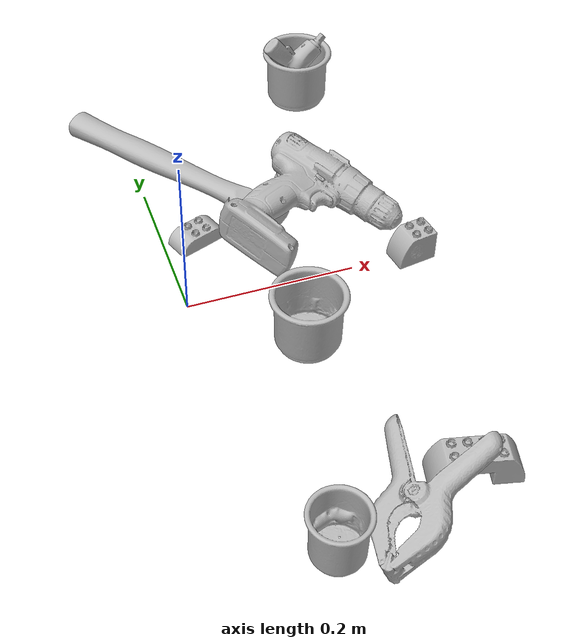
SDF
<sdf version="1.4">
  <world name="default">
    <light name="light1" type="point">
      <pose>0 0 1 0 0 0</pose>
      <diffuse>3 3 3 1</diffuse>
      <specular>3 3 3 1</specular>
    </light>
    <light name="light2" type="point">
      <pose>0 0.5 2 0 0 0</pose>
      <diffuse>1 1 1 1</diffuse>
      <specular>1 1 1 1</specular>
    </light>
    <light name="light3" type="point">
      <pose>0 0.5 2 0 0 0</pose>
      <diffuse>3 3 3 1</diffuse>
      <specular>3 3 3 1</specular>
    </light>
    <scene>
      <ambient>0.7 0.7 0.7</ambient>
    </scene>
    <model name="cup1">
      <link name="link_cup1">
        <collision name="default">
          <geometry>
            <mesh>
              <uri>model://g_cups/collision_meshes/collision.obj</uri>
              <scale>1.0 1.0 1.0</scale>
            </mesh>
          </geometry>
          <surface>
            <friction>
              <ode>
                <mu>0.5</mu>
                <mu2>0.5</mu2>
              </ode>
            </friction>
          <contact>
        <ode>
            <max_vel>0</max_vel>
            <min_depth>0.0001</min_depth>
            <kp>1e8</kp>
        </ode>
    </contact></surface>
        </collision>
        <visual name="default">
          <geometry>
            <mesh>
              <uri>model://g_cups/visual_meshes/visual.dae</uri>
              <scale>1.0 1.0 1.0</scale>
            </mesh>
          </geometry>
        </visual>
        <inertial>
          <mass>0.057625629007816315</mass>
          <pose>-0.0007946282275952399 -4.206500670989044e-05 -0.0021329375449568033 -0.21382697289054745 -0.3141031271963666 0.3112149002706268</pose>
          <inertia>
            <ixx>6.726202e-05</ixx>
            <iyy>6.7033216e-05</iyy>
            <izz>6.967186e-05</izz>
            <ixy>0</ixy>
            <ixz>0</ixz>
            <iyz>0</iyz>
          </inertia>
        </inertial>
      </link>
      <pose>0.11104781925678253 -0.0920594111084938 0.03720301762223244 -2.603258123691808e-06 -6.40142690687992e-05 2.620608315512678</pose>
    </model>
    <model name="cup2">
      <link name="link_cup2">
        <collision name="default">
          <geometry>
            <mesh>
              <uri>model://c_cups/collision_meshes/collision.obj</uri>
              <scale>1.0 1.0 1.0</scale>
            </mesh>
          </geometry>
          <surface>
            <friction>
              <ode>
                <mu>0.5</mu>
                <mu2>0.5</mu2>
              </ode>
            </friction>
          <contact>
        <ode>
            <max_vel>0</max_vel>
            <min_depth>0.0001</min_depth>
            <kp>1e8</kp>
        </ode>
    </contact></surface>
        </collision>
        <visual name="default">
          <geometry>
            <mesh>
              <uri>model://c_cups/visual_meshes/visual.dae</uri>
              <scale>1.0 1.0 1.0</scale>
            </mesh>
          </geometry>
        </visual>
        <inertial>
          <mass>0.03477548435330391</mass>
          <pose>0.0007237261161208153 0.0020153902005404234 -0.0012750983005389571 0.30215732346046187 0.013461711857135551 -0.08771879968331305</pose>
          <inertia>
            <ixx>2.5862058e-05</ixx>
            <iyy>2.540504e-05</iyy>
            <izz>2.2871589e-05</izz>
            <ixy>0</ixy>
            <ixz>0</ixz>
            <iyz>0</iyz>
          </inertia>
        </inertial>
      </link>
      <pose>0.04553641378879547 -0.3514166474342346 0.033459000289440155 -6.949665402260728e-07 -3.69623282055546e-07 0.30313673944745073</pose>
    </model>
    <model name="cup3">
      <link name="link_cup3">
        <collision name="default">
          <geometry>
            <mesh>
              <uri>model://h_cups/collision_meshes/collision.obj</uri>
              <scale>1.0 1.0 1.0</scale>
            </mesh>
          </geometry>
          <surface>
            <friction>
              <ode>
                <mu>0.5</mu>
                <mu2>0.5</mu2>
              </ode>
            </friction>
          <contact>
        <ode>
            <max_vel>0</max_vel>
            <min_depth>0.0001</min_depth>
            <kp>1e8</kp>
        </ode>
    </contact></surface>
        </collision>
        <visual name="default">
          <geometry>
            <mesh>
              <uri>model://h_cups/visual_meshes/visual.dae</uri>
              <scale>1.0 1.0 1.0</scale>
            </mesh>
          </geometry>
        </visual>
        <inertial>
          <mass>0.050017159432172775</mass>
          <pose>-2.702731035242323e-05 0.0002301866770721972 -0.0018405388109385967 -0.024362003715272553 0.06545245272055236 0.12885201823743497</pose>
          <inertia>
            <ixx>6.459484e-05</ixx>
            <iyy>6.382401e-05</iyy>
            <izz>6.774227e-05</izz>
            <ixy>0</ixy>
            <ixz>0</ixz>
            <iyz>0</iyz>
          </inertia>
        </inertial>
      </link>
      <pose>0.2524937689304352 0.3419918119907379 0.037757594138383865 -4.7574602703431795e-05 -2.4890044178410862e-05 -2.655946445603173</pose>
    </model>
    <model name="toy1">
      <link name="link_toy1">
        <collision name="default">
          <geometry>
            <mesh>
              <uri>model://e_lego_duplo/collision_meshes/collision.obj</uri>
              <scale>1.0 1.0 1.0</scale>
            </mesh>
          </geometry>
          <surface>
            <friction>
              <ode>
                <mu>0.5</mu>
                <mu2>0.5</mu2>
              </ode>
            </friction>
          <contact>
        <ode>
            <max_vel>0</max_vel>
            <min_depth>0.0001</min_depth>
            <kp>1e8</kp>
        </ode>
    </contact></surface>
        </collision>
        <visual name="default">
          <geometry>
            <mesh>
              <uri>model://e_lego_duplo/visual_meshes/visual.dae</uri>
              <scale>1.0 1.0 1.0</scale>
            </mesh>
          </geometry>
        </visual>
        <inertial>
          <mass>0.09100330621004105</mass>
          <pose>0.0003256048948969692 0.00023485418932978064 0.0019521461799740791 -0.02256778535698338 -6.825395529084007e-05 -0.0076251622764869605</pose>
          <inertia>
            <ixx>1.897719e-05</ixx>
            <iyy>7.788726e-05</iyy>
            <izz>7.584653e-05</izz>
            <ixy>0</ixy>
            <ixz>0</ixz>
            <iyz>0</iyz>
          </inertia>
        </inertial>
      </link>
      <pose>0.20577342808246613 -0.30818843841552734 0.021808987483382225 1.1025158414239768e-05 -3.7974999042283602e-06 -0.2252689498720425</pose>
    </model>
    <model name="toy2">
      <link name="link_toy2">
        <collision name="default">
          <geometry>
            <mesh>
              <uri>model://b_toy_airplane/collision_meshes/collision.obj</uri>
              <scale>0.5 0.5 0.5</scale>
            </mesh>
          </geometry>
          <surface>
            <friction>
              <ode>
                <mu>0.5</mu>
                <mu2>0.5</mu2>
              </ode>
            </friction>
          <contact>
        <ode>
            <max_vel>0</max_vel>
            <min_depth>0.0001</min_depth>
            <kp>1e8</kp>
        </ode>
    </contact></surface>
        </collision>
        <visual name="default">
          <geometry>
            <mesh>
              <uri>model://b_toy_airplane/visual_meshes/visual.dae</uri>
              <scale>0.5 0.5 0.5</scale>
            </mesh>
          </geometry>
        </visual>
        <inertial>
          <mass>0.06363805383443832</mass>
          <pose>0.002540681976824999 0.0020077931694686413 0.004771532956510782 -0.0400181041712346 -0.04022185546555606 -0.5601502891427816</pose>
          <inertia>
            <ixx>2.9536302e-05</ixx>
            <iyy>1.1805946e-05</iyy>
            <izz>3.6746103e-05</izz>
            <ixy>0</ixy>
            <ixz>0</ixz>
            <iyz>0</iyz>
          </inertia>
        </inertial>
      </link>
      <pose>0.24839791655540466 0.3379323482513428 0.06660706549882889 -1.5807795517745815 -0.6795856680387046 0.1888314018314063</pose>
    </model>
    <model name="toy3">
      <link name="link_toy3">
        <collision name="default">
          <geometry>
            <mesh>
              <uri>model://d_lego_duplo/collision_meshes/collision.obj</uri>
              <scale>1.0 1.0 1.0</scale>
            </mesh>
          </geometry>
          <surface>
            <friction>
              <ode>
                <mu>0.5</mu>
                <mu2>0.5</mu2>
              </ode>
            </friction>
          <contact>
        <ode>
            <max_vel>0</max_vel>
            <min_depth>0.0001</min_depth>
            <kp>1e8</kp>
        </ode>
    </contact></surface>
        </collision>
        <visual name="default">
          <geometry>
            <mesh>
              <uri>model://d_lego_duplo/visual_meshes/visual.dae</uri>
              <scale>1.0 1.0 1.0</scale>
            </mesh>
          </geometry>
        </visual>
        <inertial>
          <mass>0.05334000289440155</mass>
          <pose>0.002830563811585307 0.0001636617089388892 0.0008589810458943248 0.0801090676593232 -0.3835525121717052 0.0010296416750687279</pose>
          <inertia>
            <ixx>1.0325837e-05</ixx>
            <iyy>1.4655165e-05</iyy>
            <izz>1.4132847e-05</izz>
            <ixy>0</ixy>
            <ixz>0</ixz>
            <iyz>0</iyz>
          </inertia>
        </inertial>
      </link>
      <pose>0.2734639346599579 -0.0016767390770837665 0.0217396579682827 0.00032996130763089643 0.00022948931764247142 0.15371016018415382</pose>
    </model>
    <model name="toy4">
      <link name="link_toy4">
        <collision name="default">
          <geometry>
            <mesh>
              <uri>model://a_lego_duplo/collision_meshes/collision.obj</uri>
              <scale>1.0 1.0 1.0</scale>
            </mesh>
          </geometry>
          <surface>
            <friction>
              <ode>
                <mu>0.5</mu>
                <mu2>0.5</mu2>
              </ode>
            </friction>
          <contact>
        <ode>
            <max_vel>0</max_vel>
            <min_depth>0.0001</min_depth>
            <kp>1e8</kp>
        </ode>
    </contact></surface>
        </collision>
        <visual name="default">
          <geometry>
            <mesh>
              <uri>model://a_lego_duplo/visual_meshes/visual.dae</uri>
              <scale>1.0 1.0 1.0</scale>
            </mesh>
          </geometry>
        </visual>
        <inertial>
          <mass>0.02371947281062603</mass>
          <pose>-0.00011337659088894725 0.00018517536227591336 0.00036926098982803524 -0.014117032318495473 -0.00012566219654468525 6.139472672246545e-05</pose>
          <inertia>
            <ixx>3.0410272e-06</ixx>
            <iyy>6.8125664e-06</iyy>
            <izz>8.438875e-06</izz>
            <ixy>0</ixy>
            <ixz>0</ixz>
            <iyz>0</iyz>
          </inertia>
        </inertial>
      </link>
      <pose>0.041519612073898315 0.10373011976480484 0.012112000957131386 -2.501247080722951e-08 -3.7880589201257726e-08 -2.777995636690099</pose>
    </model>
    <model name="hardware1">
      <link name="link_hardware1">
        <collision name="default">
          <geometry>
            <mesh>
              <uri>model://hammer/collision_meshes/collision.obj</uri>
              <scale>1.0 1.0 1.0</scale>
            </mesh>
          </geometry>
          <surface>
            <friction>
              <ode>
                <mu>0.5</mu>
                <mu2>0.5</mu2>
              </ode>
            </friction>
          <contact>
        <ode>
            <max_vel>0</max_vel>
            <min_depth>0.0001</min_depth>
            <kp>1e8</kp>
        </ode>
    </contact></surface>
        </collision>
        <visual name="default">
          <geometry>
            <mesh>
              <uri>model://hammer/visual_meshes/visual.dae</uri>
              <scale>1.0 1.0 1.0</scale>
            </mesh>
          </geometry>
        </visual>
        <inertial>
          <mass>0.21542595326900482</mass>
          <pose>0.009415775537490845 -0.011892358772456646 -0.00012350629549473524 0.02315578421630864 -0.004792165572519315 -0.012760317567756519</pose>
          <inertia>
            <ixx>9.2278024e-05</ixx>
            <iyy>0.0025004656</iyy>
            <izz>0.002572105</izz>
            <ixy>0</ixy>
            <ixz>0</ixz>
            <iyz>0</iyz>
          </inertia>
        </inertial>
      </link>
      <pose>0.0623689629137516 0.2216963768005371 0.016264386475086212 -0.005148022613545347 -0.0013653789695133478 -0.9424664012900463</pose>
    </model>
    <model name="hardware2">
      <link name="link_hardware2">
        <collision name="default">
          <geometry>
            <mesh>
              <uri>model://large_clamp/collision_meshes/collision.obj</uri>
              <scale>1.0 1.0 1.0</scale>
            </mesh>
          </geometry>
          <surface>
            <friction>
              <ode>
                <mu>0.5</mu>
                <mu2>0.5</mu2>
              </ode>
            </friction>
          <contact>
        <ode>
            <max_vel>0</max_vel>
            <min_depth>0.0001</min_depth>
            <kp>1e8</kp>
        </ode>
    </contact></surface>
        </collision>
        <visual name="default">
          <geometry>
            <mesh>
              <uri>model://large_clamp/visual_meshes/visual.dae</uri>
              <scale>1.0 1.0 1.0</scale>
            </mesh>
          </geometry>
        </visual>
        <inertial>
          <mass>0.16898278892040253</mass>
          <pose>0.006369357462972403 0.00035856629256159067 -0.00018398034444544464 -0.002133075920149734 0.009671594117503977 0.026633212091596442</pose>
          <inertia>
            <ixx>0.00014908903</ixx>
            <iyy>0.00028312797</iyy>
            <izz>0.00040958088</izz>
            <ixy>0</ixy>
            <ixz>0</ixz>
            <iyz>0</iyz>
          </inertia>
        </inertial>
      </link>
      <pose>0.13189952075481415 -0.3361014425754547 0.02959270216524601 0.33164002577990886 0.192425163538533 -2.337661613213794</pose>
    </model>
    <model name="hardware3">
      <link name="link_hardware3">
        <collision name="default">
          <geometry>
            <mesh>
              <uri>model://power_drill/collision_meshes/collision.obj</uri>
              <scale>1.0 1.0 1.0</scale>
            </mesh>
          </geometry>
          <surface>
            <friction>
              <ode>
                <mu>0.5</mu>
                <mu2>0.5</mu2>
              </ode>
            </friction>
          <contact>
        <ode>
            <max_vel>0</max_vel>
            <min_depth>0.0001</min_depth>
            <kp>1e8</kp>
        </ode>
    </contact></surface>
        </collision>
        <visual name="default">
          <geometry>
            <mesh>
              <uri>model://power_drill/visual_meshes/visual.dae</uri>
              <scale>1.0 1.0 1.0</scale>
            </mesh>
          </geometry>
        </visual>
        <inertial>
          <mass>0.7224003672599792</mass>
          <pose>-0.014780545607209206 0.014369428157806396 0.0012414171360433102 0.0046091635101465946 0.00407302394444766 -0.18362692290061644</pose>
          <inertia>
            <ixx>0.002943816</ixx>
            <iyy>0.0011582379</iyy>
            <izz>0.0038878287</izz>
            <ixy>0</ixy>
            <ixz>0</ixz>
            <iyz>0</iyz>
          </inertia>
        </inertial>
      </link>
      <pose>0.16864989697933197 0.07108445465564728 0.03958006203174591 -0.06542782738597645 0.21902574490436982 -0.9456884451920218</pose>
    </model>
  <physics type="ode">
      <max_contacts>50</max_contacts>
      <ode>
        <solver>
          <type>quick</type>
          <iters>75</iters>
        </solver>
        <constraints>
          <contact_max_correcting_vel>0</contact_max_correcting_vel>
          <contact_surface_layer>0</contact_surface_layer>
        </constraints>
      </ode>
    </physics></world>
</sdf>
